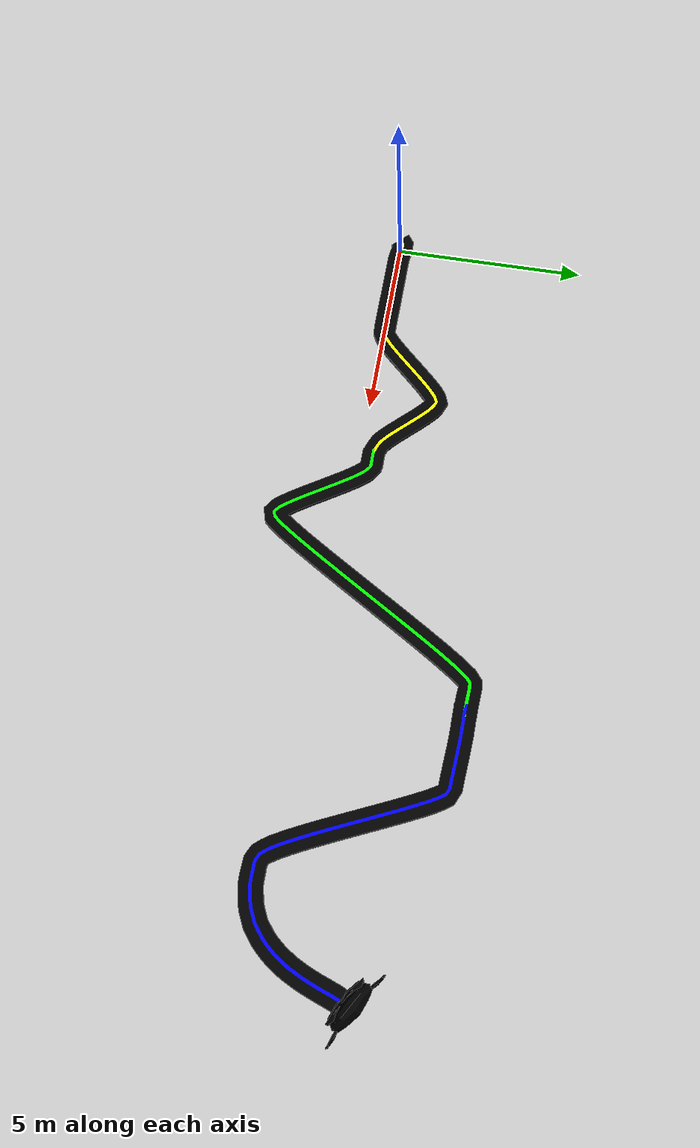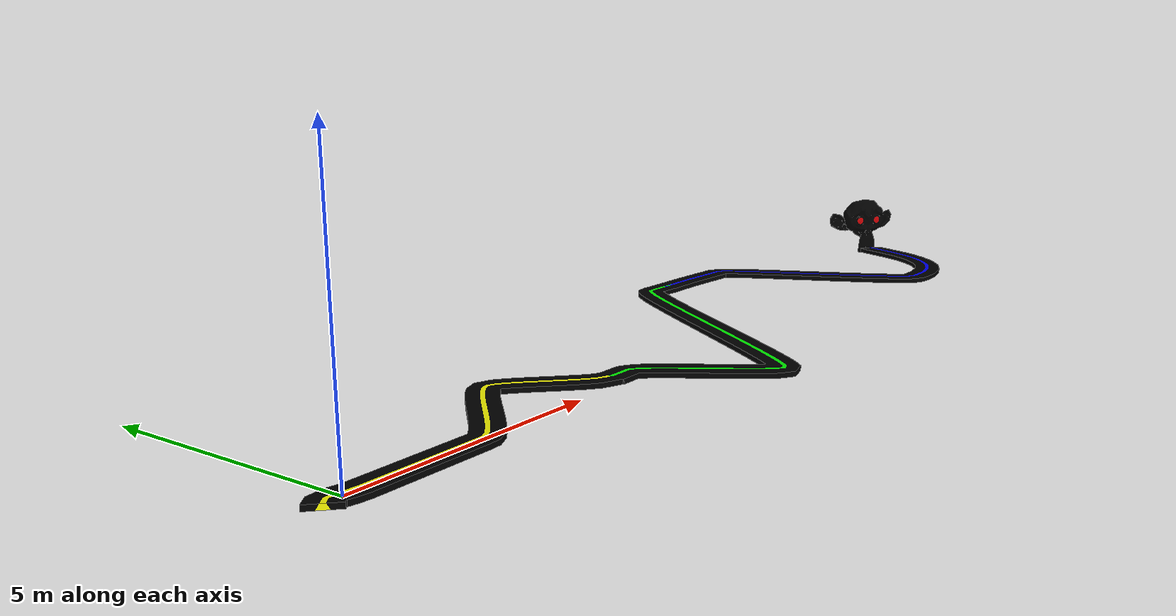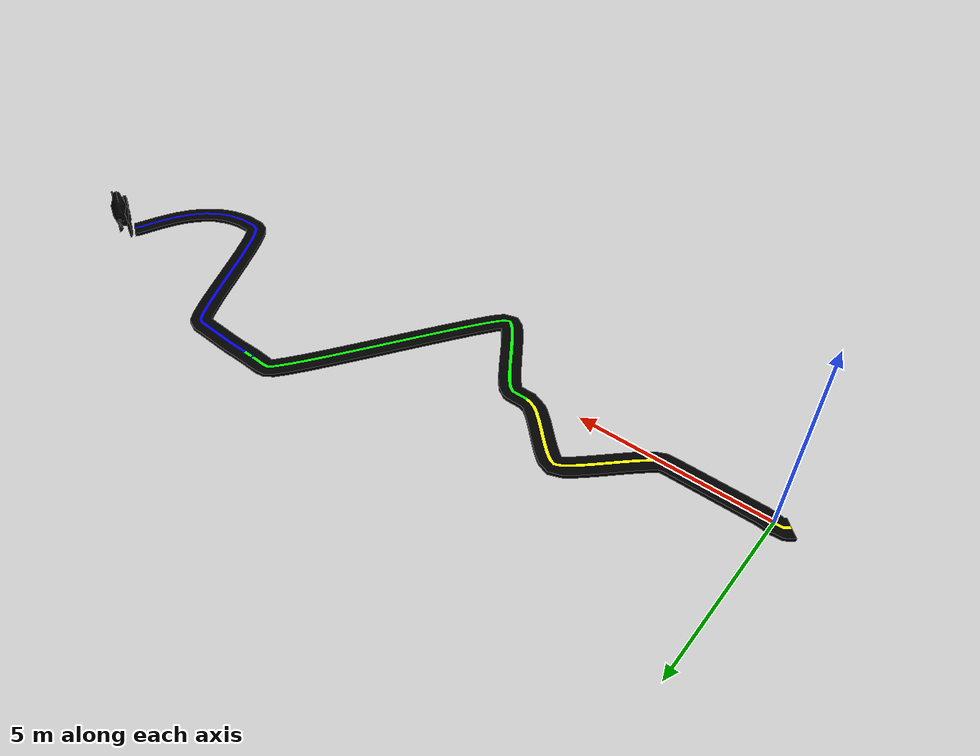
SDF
<?xml version='1.0'?>
<sdf version='1.7'>
  <model name='triyel'>
    <link name='link_0'>
      <inertial>
        <mass>100</mass>
        <inertia>
          <ixx>0</ixx>
          <ixy>0</ixy>
          <ixz>0</ixz>
          <iyy>0</iyy>
          <iyz>0</iyz>
          <izz>0</izz>
        </inertia>
        <pose>0 0 0 0 -0 0</pose>
      </inertial>
      <pose>-4.3e-05 4e-06 0 0 -0 0</pose>
      <self_collide>0</self_collide>
      <enable_wind>0</enable_wind>
      <kinematic>1</kinematic>
      <gravity>1</gravity>
      <visual name='visual'>
        <pose>0 0 0 0 -0 0</pose>
        <geometry>
          <mesh>
            <uri>/home/sorin/blenderek/triyel.dae</uri>
            <scale>0.3 0.3 0.3</scale>
          </mesh>
        </geometry>
        <transparency>0</transparency>
        <cast_shadows>1</cast_shadows>
        <material>
          <shader type='pixel'>
            <normal_map>__default__</normal_map>
          </shader>
        </material>
      </visual>
      <collision name='collision'>
        <laser_retro>0</laser_retro>
        <max_contacts>10</max_contacts>
        <pose>0 0 0 0 -0 0</pose>
        <geometry>
          <mesh>
            <uri>/home/sorin/blenderek/triyel.dae</uri>
            <scale>0.3 0.3 0.3</scale>
          </mesh>
        </geometry>
        <surface>
          <friction>
            <ode>
              <mu>1</mu>
              <mu2>1</mu2>
              <fdir1>0 0 0</fdir1>
              <slip1>0</slip1>
              <slip2>0</slip2>
            </ode>
            <torsional>
              <coefficient>1</coefficient>
              <patch_radius>0</patch_radius>
              <surface_radius>0</surface_radius>
              <use_patch_radius>1</use_patch_radius>
              <ode>
                <slip>0</slip>
              </ode>
            </torsional>
          </friction>
          <bounce>
            <restitution_coefficient>0</restitution_coefficient>
            <threshold>1e+06</threshold>
          </bounce>
          <contact>
            <collide_without_contact>0</collide_without_contact>
            <collide_without_contact_bitmask>1</collide_without_contact_bitmask>
            <collide_bitmask>1</collide_bitmask>
            <ode>
              <soft_cfm>0</soft_cfm>
              <soft_erp>0.2</soft_erp>
              <kp>1e+13</kp>
              <kd>1</kd>
              <max_vel>0.01</max_vel>
              <min_depth>0</min_depth>
            </ode>
            <bullet>
              <split_impulse>1</split_impulse>
              <split_impulse_penetration_threshold>-0.01</split_impulse_penetration_threshold>
              <soft_cfm>0</soft_cfm>
              <soft_erp>0.2</soft_erp>
              <kp>1e+13</kp>
              <kd>1</kd>
            </bullet>
          </contact>
        </surface>
      </collision>
    </link>
    <static>0</static>
    <allow_auto_disable>1</allow_auto_disable>
  </model>
</sdf>
